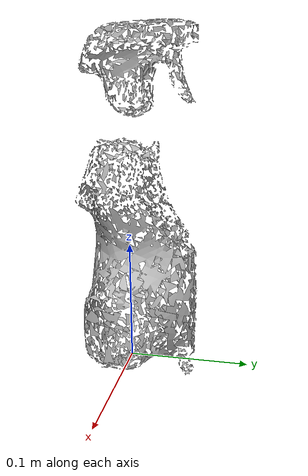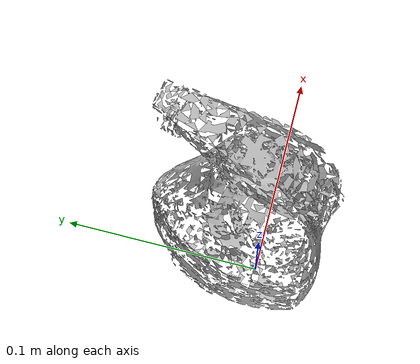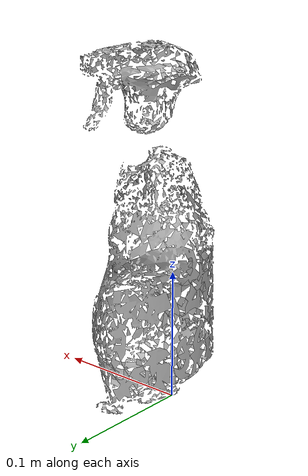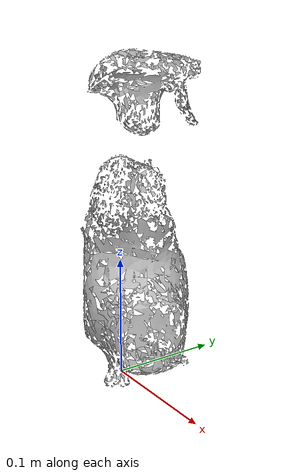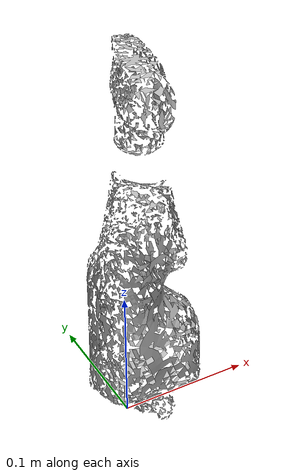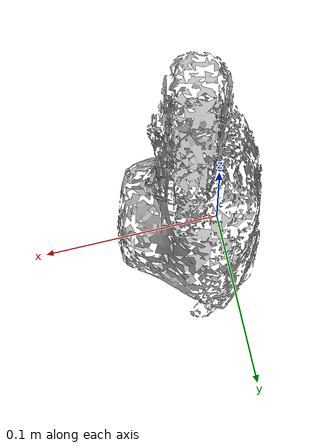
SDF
<?xml version='1.0'?>
<sdf version="1.4">
  <model name="windex_bottle">
    <static>false</static>
    <link name="link">
      <inertial>
        <pose>0.013942564305577316 0.00843004384724436 0.10236853791650995 3.1170214258751607 -0.004835104148543597 2.8362535954806742</pose>
        <mass>0.0007354300167246426</mass>
        <inertia>
          <ixx>3.599403028749102e-06</ixx>
          <ixy>-1.5671014203232698e-22</ixy>
          <ixz>-3.676113843798971e-24</ixz>
          <iyy>3.4888416388457247e-06</iyy>
          <iyz>-1.8731300446796854e-22</iyz>
          <izz>5.245896766047286e-07</izz>
        </inertia>
      </inertial>
      <collision name="collision">
        <geometry>
          <mesh>
            <!-- Use a downsampled mesh for collisions -->
            <uri>model://022_windex_bottle/downsampled.obj</uri>
	        </mesh>
        </geometry>
        <surface>
          <friction>
            <ode>
              <mu>80</mu>
              <mu2>60</mu2>
              <kp>100</kp>
              <kd>100</kd>
            </ode>
          </friction>
        </surface>
      </collision>
      <visual name="visual">
        <geometry>
          <mesh>
            <uri>model://022_windex_bottle/google_16k/textured.obj</uri>
	        </mesh>
        </geometry>
        <material>
          <script>
            <uri>model://022_windex_bottle/windex_bottle.material</uri>
            <name>windex_bottle</name>
          </script>
        </material>
      </visual>
    </link>
  </model>
</sdf>
